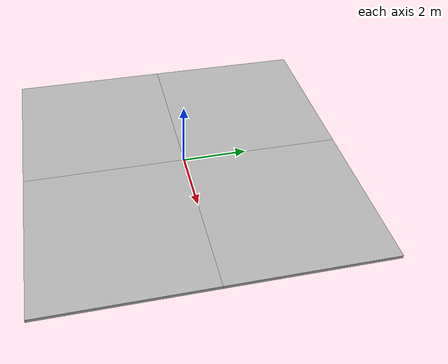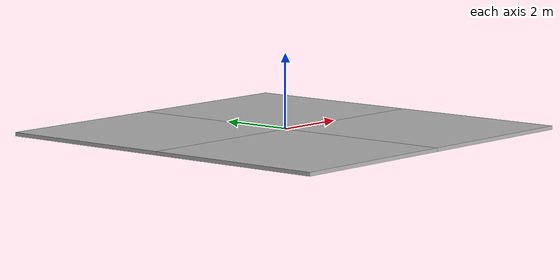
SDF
<?xml version="1.0"?>
<sdf version="1.5">
  <model name="mud_plane">
    <static>true</static>
    <link name="link">
      <collision name="collision">
        <geometry>
          <box>
            <size>10 10 0.1</size>
          </box>
        </geometry>
      </collision>
      <visual name="visual_1">
        <pose>-2.5 2.5 -0.05 0 0 0</pose>
        <cast_shadows>false</cast_shadows>
        <geometry>
          <box>
            <size>5 5 0.1</size>
          </box>
        </geometry>
        <material>
          <script>
            <uri>model://mud_plane/materials/scripts</uri>
            <uri>model://mud_plane/materials/textures</uri>
            <name>vrc/mud</name>
          </script>
        </material>
      </visual>
      <visual name="visual_2">
        <pose>2.5 2.5 -0.05 0 0 0</pose>
        <cast_shadows>false</cast_shadows>
        <geometry>
          <box>
            <size>5 5 0.1</size>
          </box>
        </geometry>
        <material>
          <script>
            <uri>model://mud_plane/materials/scripts</uri>
            <uri>model://mud_plane/materials/textures</uri>
            <name>vrc/mud</name>
          </script>
        </material>
      </visual>
      <visual name="visual_3">
        <pose>2.5 -2.5 -0.05 0 0 0</pose>
        <cast_shadows>false</cast_shadows>
        <geometry>
          <box>
            <size>5 5 0.1</size>
          </box>
        </geometry>
        <material>
          <script>
            <uri>model://mud_plane/materials/scripts</uri>
            <uri>model://mud_plane/materials/textures</uri>
            <name>vrc/mud</name>
          </script>
        </material>
      </visual>
      <visual name="visual_4">
        <pose>-2.5 -2.5 -0.05 0 0 0</pose>
        <cast_shadows>false</cast_shadows>
        <geometry>
          <box>
            <size>5 5 0.1</size>
          </box>
        </geometry>
        <material>
          <script>
            <uri>model://mud_plane/materials/scripts</uri>
            <uri>model://mud_plane/materials/textures</uri>
            <name>vrc/mud</name>
          </script>
        </material>
      </visual>
    </link>
  </model>
</sdf>
